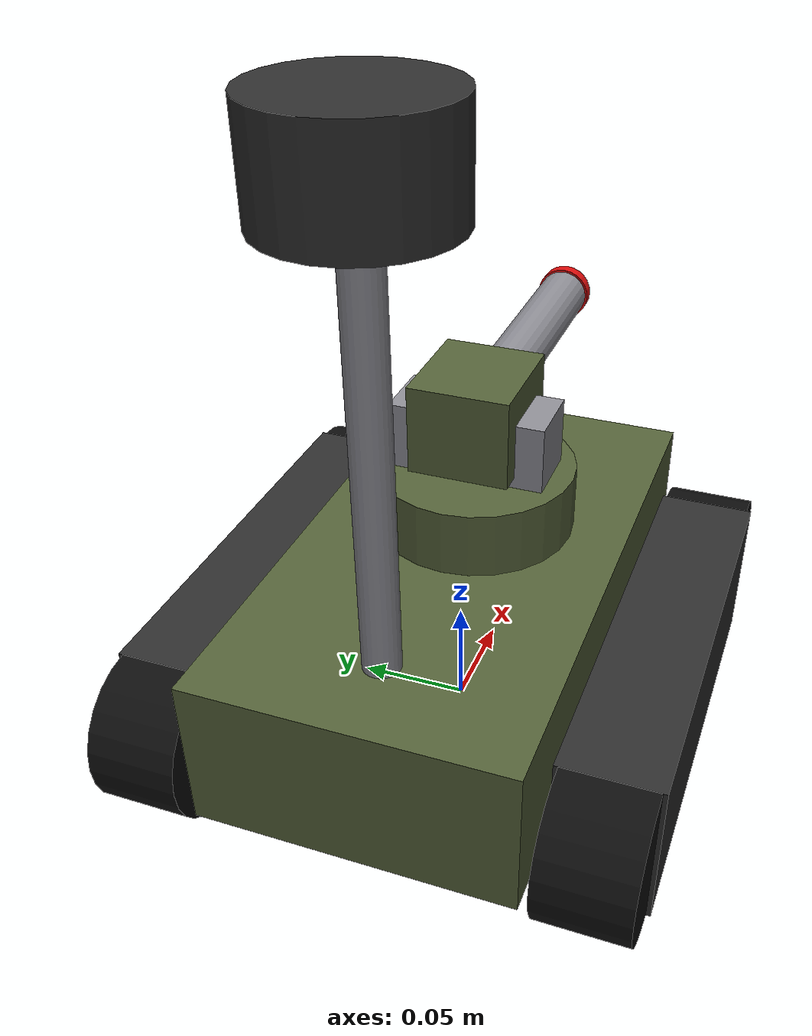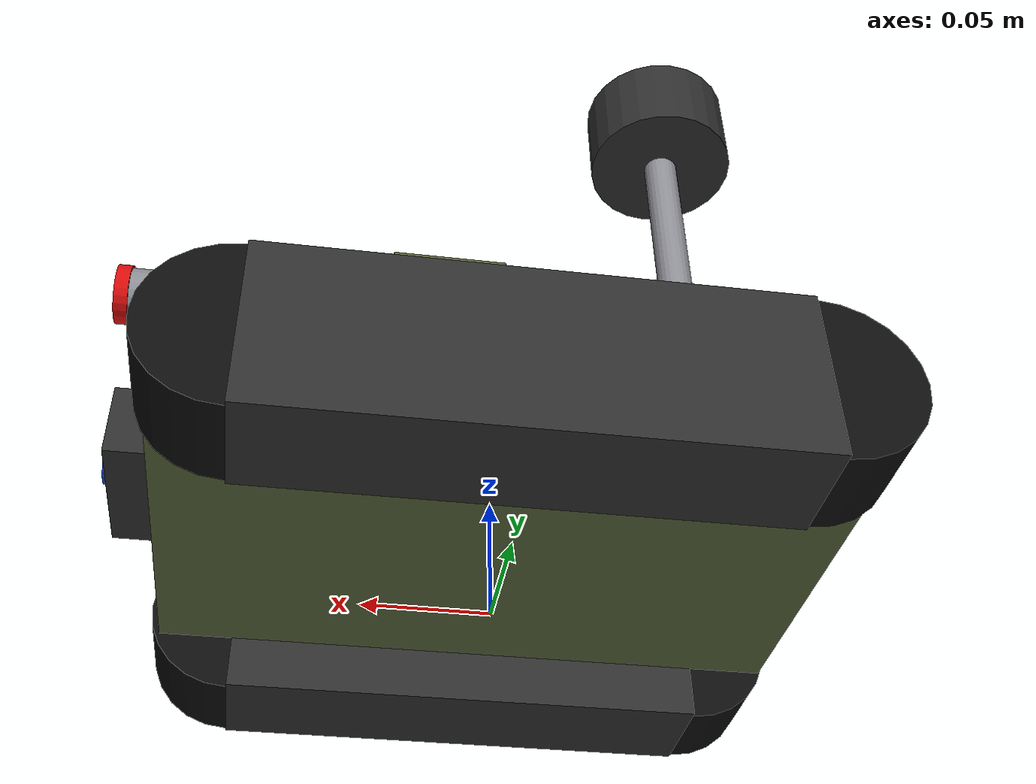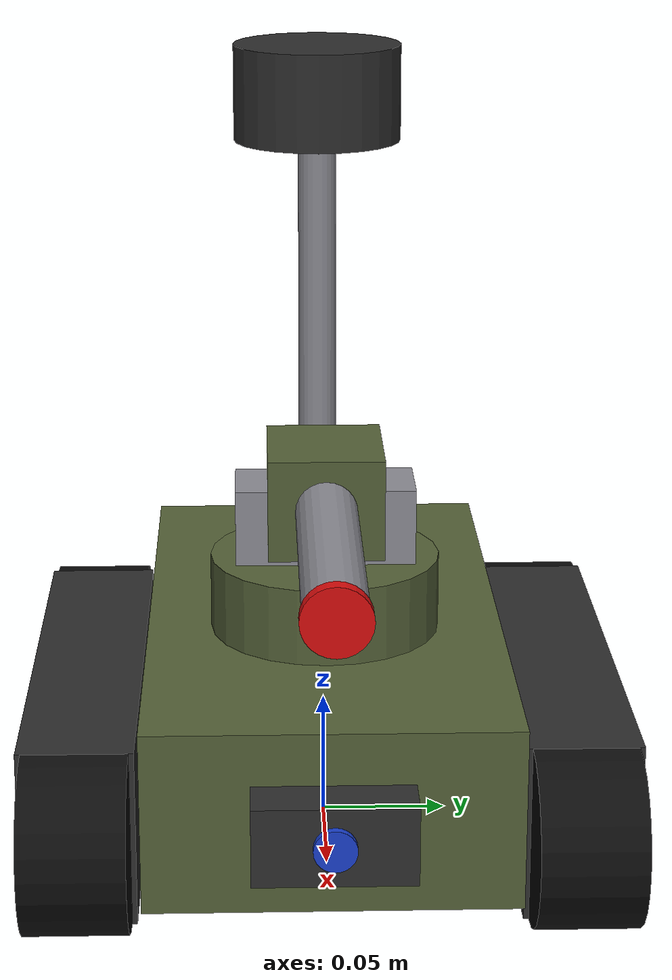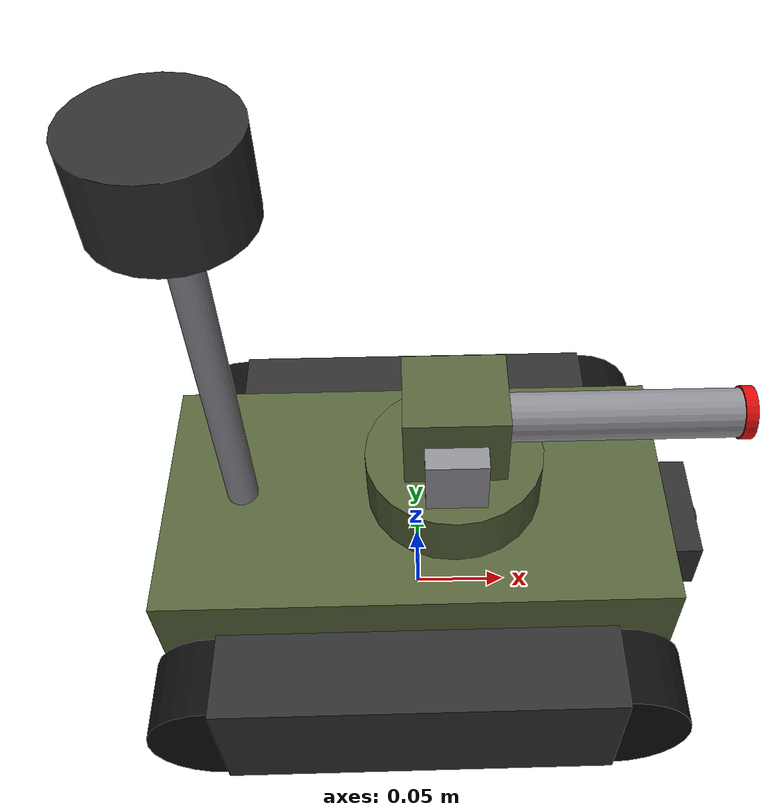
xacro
<?xml version="1.0"?>
<robot name="robo_sniper" xmlns:xacro="http://www.ros.org/wiki/xacro">

  <!-- ===================== medidas ===================== -->
  <xacro:property name="PI" value="3.14159265359"/>
  <xacro:property name="chassi_c" value="0.26"/>     <!-- comprimento (x) -->
  <xacro:property name="chassi_l" value="0.14"/>     <!-- largura (y) -->
  <xacro:property name="chassi_a" value="0.07"/>     <!-- altura (z) -->
  <xacro:property name="chassi_z" value="0.02"/>     <!-- centro do chassi acima dos eixos -->
  <xacro:property name="chassi_m" value="1.2"/>
  <xacro:property name="roda_r" value="0.035"/>
  <xacro:property name="roda_e" value="0.04"/>       <!-- espessura da roda = largura da lagarta -->
  <xacro:property name="roda_m" value="0.08"/>
  <xacro:property name="entre_eixos" value="0.20"/>  <!-- roda guia (frente) ate roda motriz (tras) -->
  <xacro:property name="bitola" value="0.19"/>       <!-- entre os centros das duas esteiras -->
  <xacro:property name="topo_z" value="${chassi_z + chassi_a / 2}"/>   <!-- tampa do chassi -->
  <xacro:property name="cano_c" value="0.14"/>       <!-- comprimento do cano do emissor -->
  <xacro:property name="mastro_a" value="0.175"/>    <!-- lidar acima da torre, mesmo com o cano erguido -->

  <!-- ===================== materiais ===================== -->
  <material name="verde_militar"><color rgba="0.33 0.38 0.22 1"/></material>
  <material name="cinza_escuro"><color rgba="0.18 0.18 0.18 1"/></material>
  <material name="borracha"><color rgba="0.05 0.05 0.05 1"/></material>
  <material name="metal"><color rgba="0.55 0.55 0.58 1"/></material>
  <material name="vermelho"><color rgba="0.85 0.05 0.05 1"/></material>
  <material name="azul"><color rgba="0.1 0.25 0.8 1"/></material>

  <!-- ===================== macros de inercia ===================== -->
  <xacro:macro name="inercia_caixa" params="m x y z *origin">
    <inertial>
      <xacro:insert_block name="origin"/>
      <mass value="${m}"/>
      <inertia ixx="${m * (y * y + z * z) / 12}" ixy="0" ixz="0"
               iyy="${m * (x * x + z * z) / 12}" iyz="0" izz="${m * (x * x + y * y) / 12}"/>
    </inertial>
  </xacro:macro>

  <!-- cilindro com eixo em z do frame dado por origin -->
  <xacro:macro name="inercia_cilindro" params="m r h *origin">
    <inertial>
      <xacro:insert_block name="origin"/>
      <mass value="${m}"/>
      <inertia ixx="${m * (3 * r * r + h * h) / 12}" ixy="0" ixz="0"
               iyy="${m * (3 * r * r + h * h) / 12}" iyz="0" izz="${m * r * r / 2}"/>
    </inertial>
  </xacro:macro>

  <!-- ===================== chassi ===================== -->
  <link name="base_footprint"/>

  <link name="base_link">
    <visual>
      <origin xyz="0 0 ${chassi_z}"/>
      <geometry><box size="${chassi_c} ${chassi_l} ${chassi_a}"/></geometry>
      <material name="verde_militar"/>
    </visual>
    <collision>
      <origin xyz="0 0 ${chassi_z}"/>
      <geometry><box size="${chassi_c} ${chassi_l} ${chassi_a}"/></geometry>
    </collision>
    <xacro:inercia_caixa m="${chassi_m}" x="${chassi_c}" y="${chassi_l}" z="${chassi_a}">
      <origin xyz="0 0 ${chassi_z}"/>
    </xacro:inercia_caixa>
  </link>

  <joint name="base_footprint_joint" type="fixed">
    <parent link="base_footprint"/>
    <child link="base_link"/>
    <origin xyz="0 0 ${roda_r}"/>
  </joint>

  <!-- ===================== esteiras ===================== -->
  <!-- lado: 1 = esquerda (+y), -1 = direita (-y) -->
  <xacro:macro name="roda" params="nome lado x">
    <link name="${nome}_link">
      <visual>
        <origin rpy="${PI / 2} 0 0"/>
        <geometry><cylinder radius="${roda_r}" length="${roda_e}"/></geometry>
        <material name="borracha"/>
      </visual>
      <collision>
        <origin rpy="${PI / 2} 0 0"/>
        <geometry><cylinder radius="${roda_r}" length="${roda_e}"/></geometry>
      </collision>
      <xacro:inercia_cilindro m="${roda_m}" r="${roda_r}" h="${roda_e}">
        <origin rpy="${PI / 2} 0 0"/>
      </xacro:inercia_cilindro>
    </link>
    <joint name="${nome}_joint" type="continuous">
      <parent link="base_link"/>
      <child link="${nome}_link"/>
      <origin xyz="${x} ${lado * bitola / 2} 0"/>
      <axis xyz="0 1 0"/>
    </joint>
  </xacro:macro>

  <!-- lagarta: caixa entre os eixos; com as rodas nas pontas forma o contorno da esteira -->
  <xacro:macro name="esteira" params="lado nome">
    <link name="esteira_${nome}_link">
      <visual>
        <geometry><box size="${entre_eixos} ${roda_e + 0.004} ${2 * roda_r}"/></geometry>
        <material name="cinza_escuro"/>
      </visual>
      <xacro:inercia_caixa m="0.1" x="${entre_eixos}" y="${roda_e}" z="${2 * roda_r}">
        <origin/>
      </xacro:inercia_caixa>
    </link>
    <joint name="esteira_${nome}_joint" type="fixed">
      <parent link="base_link"/>
      <child link="esteira_${nome}_link"/>
      <origin xyz="0 ${lado * bitola / 2} 0"/>
    </joint>
    <xacro:roda nome="roda_motriz_${nome}" lado="${lado}" x="${-entre_eixos / 2}"/>
    <xacro:roda nome="roda_guia_${nome}" lado="${lado}" x="${entre_eixos / 2}"/>
  </xacro:macro>

  <xacro:esteira lado="1" nome="esq"/>
  <xacro:esteira lado="-1" nome="dir"/>

  <!-- ===================== camera (frente do chassi) ===================== -->
  <link name="camera_link">
    <visual>
      <geometry><box size="0.02 0.06 0.03"/></geometry>
      <material name="cinza_escuro"/>
    </visual>
    <visual>
      <origin xyz="0.011 0 0" rpy="0 ${PI / 2} 0"/>
      <geometry><cylinder radius="0.008" length="0.004"/></geometry>
      <material name="azul"/>
    </visual>
    <collision>
      <geometry><box size="0.02 0.06 0.03"/></geometry>
    </collision>
    <xacro:inercia_caixa m="0.03" x="0.02" y="0.06" z="0.03"><origin/></xacro:inercia_caixa>
  </link>
  <joint name="camera_joint" type="fixed">
    <parent link="base_link"/>
    <child link="camera_link"/>
    <origin xyz="${chassi_c / 2 + 0.01} 0 ${chassi_z}"/>
  </joint>

  <link name="camera_optical_link"/>
  <joint name="camera_optical_joint" type="fixed">
    <parent link="camera_link"/>
    <child link="camera_optical_link"/>
    <origin rpy="${-PI / 2} 0 ${-PI / 2}"/>
  </joint>

  <!-- ===================== lidar (mastro na traseira) ===================== -->
  <link name="mastro_link">
    <visual>
      <origin xyz="0 0 ${mastro_a / 2}"/>
      <geometry><cylinder radius="0.008" length="${mastro_a}"/></geometry>
      <material name="metal"/>
    </visual>
    <xacro:inercia_cilindro m="0.03" r="0.008" h="${mastro_a}">
      <origin xyz="0 0 ${mastro_a / 2}"/>
    </xacro:inercia_cilindro>
  </link>
  <joint name="mastro_joint" type="fixed">
    <parent link="base_link"/>
    <child link="mastro_link"/>
    <origin xyz="${-chassi_c / 2 + 0.04} 0 ${topo_z}"/>
  </joint>

  <link name="lidar_link">
    <visual>
      <geometry><cylinder radius="0.035" length="0.04"/></geometry>
      <material name="cinza_escuro"/>
    </visual>
    <collision>
      <geometry><cylinder radius="0.035" length="0.04"/></geometry>
    </collision>
    <xacro:inercia_cilindro m="0.17" r="0.035" h="0.04"><origin/></xacro:inercia_cilindro>
  </link>
  <joint name="lidar_joint" type="fixed">
    <parent link="mastro_link"/>
    <child link="lidar_link"/>
    <origin xyz="0 0 ${mastro_a + 0.02}"/>
  </joint>

  <!-- ===================== torre pan/tilt com o emissor de luz ===================== -->
  <link name="torre_pan_link">
    <visual>
      <origin xyz="0 0 0.015"/>
      <geometry><cylinder radius="0.045" length="0.03"/></geometry>
      <material name="verde_militar"/>
    </visual>
    <visual>   <!-- suportes do eixo de tilt -->
      <origin xyz="0 0 0.045"/>
      <geometry><box size="0.03 0.07 0.03"/></geometry>
      <material name="metal"/>
    </visual>
    <collision>
      <origin xyz="0 0 0.015"/>
      <geometry><cylinder radius="0.045" length="0.03"/></geometry>
    </collision>
    <xacro:inercia_cilindro m="0.15" r="0.045" h="0.03">
      <origin xyz="0 0 0.015"/>
    </xacro:inercia_cilindro>
  </link>
  <joint name="torre_pan_joint" type="revolute">
    <parent link="base_link"/>
    <child link="torre_pan_link"/>
    <origin xyz="0.02 0 ${topo_z}"/>
    <axis xyz="0 0 1"/>
    <limit lower="${-170 * PI / 180}" upper="${170 * PI / 180}" effort="1.0" velocity="3.14"/>
    <dynamics damping="0.05" friction="0.01"/>
  </joint>

  <link name="torre_tilt_link">
    <visual>   <!-- bloco do emissor -->
      <geometry><box size="0.05 0.045 0.04"/></geometry>
      <material name="verde_militar"/>
    </visual>
    <visual>   <!-- cano -->
      <origin xyz="${cano_c / 2} 0 0" rpy="0 ${PI / 2} 0"/>
      <geometry><cylinder radius="0.012" length="${cano_c}"/></geometry>
      <material name="metal"/>
    </visual>
    <collision>
      <geometry><box size="0.05 0.045 0.04"/></geometry>
    </collision>
    <!-- centro de massa no eixo de tilt (torre balanceada): no Gazebo o cano nao cai sozinho -->
    <xacro:inercia_caixa m="0.1" x="${cano_c}" y="0.045" z="0.04"><origin/></xacro:inercia_caixa>
  </link>
  <joint name="torre_tilt_joint" type="revolute">
    <parent link="torre_pan_link"/>
    <child link="torre_tilt_link"/>
    <origin xyz="0 0 0.055"/>
    <axis xyz="0 1 0"/>
    <limit lower="${-40 * PI / 180}" upper="${20 * PI / 180}" effort="1.0" velocity="3.14"/>
    <dynamics damping="0.05" friction="0.01"/>
  </joint>

  <link name="emissor_link">
    <visual>   <!-- lente do emissor -->
      <origin rpy="0 ${PI / 2} 0"/>
      <geometry><cylinder radius="0.013" length="0.006"/></geometry>
      <material name="vermelho"/>
    </visual>
  </link>
  <joint name="emissor_joint" type="fixed">
    <parent link="torre_tilt_link"/>
    <child link="emissor_link"/>
    <origin xyz="${cano_c} 0 0"/>
  </joint>

  <xacro:include filename="robo_sniper.gazebo.xacro"/>

</robot>
